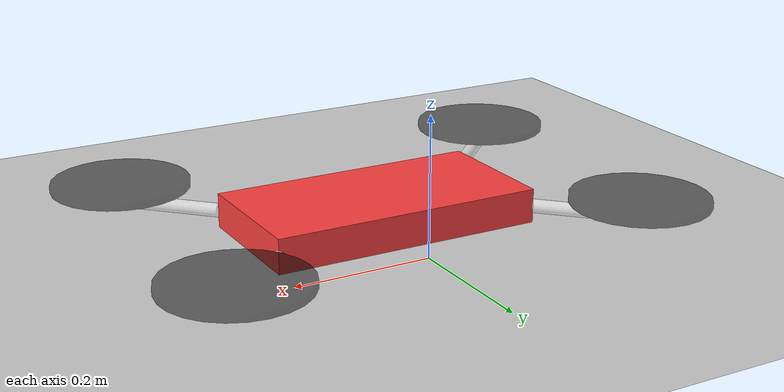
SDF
<sdf version='1.9'>
  <world name='empty'>
    <physics name='1ms' type='ignored'>
      <max_step_size>0.001</max_step_size>
      <real_time_factor>1</real_time_factor>
      <real_time_update_rate>1000</real_time_update_rate>
    </physics>
    <plugin name='gz::sim::systems::Physics' filename='ignition-gazebo-physics-system'/>
    <plugin name='gz::sim::systems::UserCommands' filename='ignition-gazebo-user-commands-system'/>
    <plugin name='gz::sim::systems::SceneBroadcaster' filename='ignition-gazebo-scene-broadcaster-system'/>
    <plugin name='gz::sim::systems::Contact' filename='ignition-gazebo-contact-system'/>
    <gravity>0 0 -9.8</gravity>
    <magnetic_field>6e-06 2.3e-05 -4.2e-05</magnetic_field>
    <atmosphere type='adiabatic'/>
    <scene>
      <ambient>0.4 0.4 0.4 1</ambient>
      <background>0.7 0.7 0.7 1</background>
      <shadows>true</shadows>
    </scene>
    <model name='ground_plane'>
      <static>true</static>
      <link name='link'>
        <collision name='collision'>
          <geometry>
            <plane>
              <normal>0 0 1</normal>
              <size>100 100</size>
            </plane>
          </geometry>
          <surface>
            <friction>
              <ode/>
            </friction>
            <bounce/>
            <contact/>
          </surface>
        </collision>
        <visual name='visual'>
          <geometry>
            <plane>
              <normal>0 0 1</normal>
              <size>100 100</size>
            </plane>
          </geometry>
          <material>
            <ambient>0.8 0.8 0.8 1</ambient>
            <diffuse>0.8 0.8 0.8 1</diffuse>
            <specular>0.8 0.8 0.8 1</specular>
          </material>
        </visual>
        <pose>0 0 0 0 -0 0</pose>
        <inertial>
          <pose>0 0 0 0 -0 0</pose>
          <mass>1</mass>
          <inertia>
            <ixx>1</ixx>
            <ixy>0</ixy>
            <ixz>0</ixz>
            <iyy>1</iyy>
            <iyz>0</iyz>
            <izz>1</izz>
          </inertia>
        </inertial>
        <enable_wind>false</enable_wind>
      </link>
      <pose>0 0 0 0 -0 0</pose>
      <self_collide>false</self_collide>
    </model>
    <model name='drone_model'>
      <link name='frame'>
        <inertial>
          <pose>0 0 0 0 -0 0</pose>
          <mass>0.95999999999999996</mass>
          <inertia>
            <ixx>0.0127917</ixx>
            <ixy>0</ixy>
            <ixz>0</ixz>
            <iyy>0.0063916700000000003</iyy>
            <iyz>0</iyz>
            <izz>0.018816699999999999</izz>
          </inertia>
        </inertial>
        <collision name='frame_collision'>
          <pose>0 0 0 0 0 0</pose>
          <geometry>
            <box>
              <size>0.4 0.2 0.05</size>
            </box>
          </geometry>
          <surface>
            <friction>
              <ode/>
            </friction>
            <bounce/>
            <contact/>
          </surface>
        </collision>
        <collision name='frame_fixed_joint_lump__arm1_collision_1'>
          <pose>0.2530330085889911 -0.1530330085889911 0 0 1.570796326794897 -0.7853981633974483</pose>
          <geometry>
            <cylinder>
              <length>0.14999999999999999</length>
              <radius>0.01</radius>
            </cylinder>
          </geometry>
          <surface>
            <friction>
              <ode/>
            </friction>
            <bounce/>
            <contact/>
          </surface>
        </collision>
        <collision name='frame_fixed_joint_lump__arm2_collision_2'>
          <pose>0.2530330085889911 0.1530330085889911 0 0 1.570796326794897 0.7853981633974483</pose>
          <geometry>
            <cylinder>
              <length>0.14999999999999999</length>
              <radius>0.01</radius>
            </cylinder>
          </geometry>
          <surface>
            <friction>
              <ode/>
            </friction>
            <bounce/>
            <contact/>
          </surface>
        </collision>
        <collision name='frame_fixed_joint_lump__arm3_collision_3'>
          <pose>-0.2530330085889911 0.1530330085889911 0 0 1.570796326794897 2.356194490192345</pose>
          <geometry>
            <cylinder>
              <length>0.14999999999999999</length>
              <radius>0.01</radius>
            </cylinder>
          </geometry>
          <surface>
            <friction>
              <ode/>
            </friction>
            <bounce/>
            <contact/>
          </surface>
        </collision>
        <collision name='frame_fixed_joint_lump__arm4_collision_4'>
          <pose>-0.2530330085889911 -0.1530330085889911 0 0 1.570796326794897 -2.356194490192345</pose>
          <geometry>
            <cylinder>
              <length>0.14999999999999999</length>
              <radius>0.01</radius>
            </cylinder>
          </geometry>
          <surface>
            <friction>
              <ode/>
            </friction>
            <bounce/>
            <contact/>
          </surface>
        </collision>
        <visual name='frame_visual'>
          <pose>0 0 0 0 0 0</pose>
          <geometry>
            <box>
              <size>0.4 0.2 0.05</size>
            </box>
          </geometry>
          <material>
            <diffuse>1 0.25 0.25 1</diffuse>
            <ambient>1 0.25 0.25 1</ambient>
          </material>
        </visual>
        <visual name='frame_fixed_joint_lump__arm1_visual_1'>
          <pose>0.2530330085889911 -0.1530330085889911 0 0 1.570796326794897 -0.7853981633974483</pose>
          <geometry>
            <cylinder>
              <length>0.14999999999999999</length>
              <radius>0.01</radius>
            </cylinder>
          </geometry>
          <material>
            <diffuse>1 1 1 0.5</diffuse>
            <ambient>1 1 1 0.5</ambient>
          </material>
        </visual>
        <visual name='frame_fixed_joint_lump__arm2_visual_2'>
          <pose>0.2530330085889911 0.1530330085889911 0 0 1.570796326794897 0.7853981633974483</pose>
          <geometry>
            <cylinder>
              <length>0.14999999999999999</length>
              <radius>0.01</radius>
            </cylinder>
          </geometry>
          <material>
            <diffuse>1 1 1 0.5</diffuse>
            <ambient>1 1 1 0.5</ambient>
          </material>
        </visual>
        <visual name='frame_fixed_joint_lump__arm3_visual_3'>
          <pose>-0.2530330085889911 0.1530330085889911 0 0 1.570796326794897 2.356194490192345</pose>
          <geometry>
            <cylinder>
              <length>0.14999999999999999</length>
              <radius>0.01</radius>
            </cylinder>
          </geometry>
          <material>
            <diffuse>1 1 1 0.5</diffuse>
            <ambient>1 1 1 0.5</ambient>
          </material>
        </visual>
        <visual name='frame_fixed_joint_lump__arm4_visual_4'>
          <pose>-0.2530330085889911 -0.1530330085889911 0 0 1.570796326794897 -2.356194490192345</pose>
          <geometry>
            <cylinder>
              <length>0.14999999999999999</length>
              <radius>0.01</radius>
            </cylinder>
          </geometry>
          <material>
            <diffuse>1 1 1 0.5</diffuse>
            <ambient>1 1 1 0.5</ambient>
          </material>
        </visual>
        <pose>0 0 0 0 -0 0</pose>
        <enable_wind>false</enable_wind>
      </link>
      <joint name='arm1_propeller1' type='revolute'>
        <pose>0 0 0 0 -0 0</pose>
        <parent>frame</parent>
        <child>propeller1</child>
        <axis>
          <xyz>0 0 1</xyz>
          <limit>
            <lower>-10000000000000000</lower>
            <upper>10000000000000000</upper>
            <effort>0.10000000000000001</effort>
            <velocity>10</velocity>
            <stiffness>100000000</stiffness>
            <dissipation>1</dissipation>
          </limit>
          <dynamics>
            <spring_reference>0</spring_reference>
            <spring_stiffness>0</spring_stiffness>
            <damping>0</damping>
            <friction>0</friction>
          </dynamics>
        </axis>
      </joint>
      <link name='propeller1'>
        <pose>0.306066 -0.206066 0.0249 0 0 -0</pose>
        <inertial>
          <pose>0 0 0 0 -0 0</pose>
          <mass>0.02</mass>
          <inertia>
            <ixx>5.0166600000000002e-05</ixx>
            <ixy>0</ixy>
            <ixz>0</ixz>
            <iyy>5.0166600000000002e-05</iyy>
            <iyz>0</iyz>
            <izz>0.0001</izz>
          </inertia>
        </inertial>
        <collision name='propeller1_collision'>
          <pose>0 0 0 0 0 0</pose>
          <geometry>
            <cylinder>
              <length>0.01</length>
              <radius>0.10000000000000001</radius>
            </cylinder>
          </geometry>
          <surface>
            <friction>
              <ode/>
            </friction>
            <bounce/>
            <contact/>
          </surface>
        </collision>
        <visual name='propeller1_visual'>
          <pose>0 0 0 0 0 0</pose>
          <geometry>
            <cylinder>
              <length>0.01</length>
              <radius>0.10000000000000001</radius>
            </cylinder>
          </geometry>
          <material>
            <diffuse>0 0 0 0.5</diffuse>
            <ambient>0 0 0 0.5</ambient>
          </material>
        </visual>
        <enable_wind>false</enable_wind>
      </link>
      <joint name='arm2_propeller2' type='revolute'>
        <pose>-0 0 0 0 -0 0</pose>
        <parent>frame</parent>
        <child>propeller2</child>
        <axis>
          <xyz>0 0 1</xyz>
          <limit>
            <lower>-10000000000000000</lower>
            <upper>10000000000000000</upper>
            <effort>0.10000000000000001</effort>
            <velocity>10</velocity>
            <stiffness>100000000</stiffness>
            <dissipation>1</dissipation>
          </limit>
          <dynamics>
            <spring_reference>0</spring_reference>
            <spring_stiffness>0</spring_stiffness>
            <damping>0</damping>
            <friction>0</friction>
          </dynamics>
        </axis>
      </joint>
      <link name='propeller2'>
        <pose>0.306066 0.206066 0.0249 0 0 1.57085</pose>
        <inertial>
          <pose>0 0 0 0 -0 0</pose>
          <mass>0.02</mass>
          <inertia>
            <ixx>5.0166600000000002e-05</ixx>
            <ixy>0</ixy>
            <ixz>0</ixz>
            <iyy>5.0166600000000002e-05</iyy>
            <iyz>0</iyz>
            <izz>0.0001</izz>
          </inertia>
        </inertial>
        <collision name='propeller2_collision'>
          <pose>0 0 0 0 0 0</pose>
          <geometry>
            <cylinder>
              <length>0.01</length>
              <radius>0.10000000000000001</radius>
            </cylinder>
          </geometry>
          <surface>
            <friction>
              <ode/>
            </friction>
            <bounce/>
            <contact/>
          </surface>
        </collision>
        <visual name='propeller2_visual'>
          <pose>0 0 0 0 0 0</pose>
          <geometry>
            <cylinder>
              <length>0.01</length>
              <radius>0.10000000000000001</radius>
            </cylinder>
          </geometry>
          <material>
            <diffuse>0 0 0 0.5</diffuse>
            <ambient>0 0 0 0.5</ambient>
          </material>
        </visual>
        <enable_wind>false</enable_wind>
      </link>
      <joint name='arm3_propeller3' type='revolute'>
        <pose>0 0 0 0 -0 0</pose>
        <parent>frame</parent>
        <child>propeller3</child>
        <axis>
          <xyz>0 0 1</xyz>
          <limit>
            <lower>-10000000000000000</lower>
            <upper>10000000000000000</upper>
            <effort>0.10000000000000001</effort>
            <velocity>10</velocity>
            <stiffness>100000000</stiffness>
            <dissipation>1</dissipation>
          </limit>
          <dynamics>
            <spring_reference>0</spring_reference>
            <spring_stiffness>0</spring_stiffness>
            <damping>0</damping>
            <friction>0</friction>
          </dynamics>
        </axis>
      </joint>
      <link name='propeller3'>
        <pose>-0.306066 0.206066 0.0249 0 0 3.14154</pose>
        <inertial>
          <pose>0 0 0 0 -0 0</pose>
          <mass>0.02</mass>
          <inertia>
            <ixx>5.0166600000000002e-05</ixx>
            <ixy>0</ixy>
            <ixz>0</ixz>
            <iyy>5.0166600000000002e-05</iyy>
            <iyz>0</iyz>
            <izz>0.0001</izz>
          </inertia>
        </inertial>
        <collision name='propeller3_collision'>
          <pose>0 0 0 0 0 0</pose>
          <geometry>
            <cylinder>
              <length>0.01</length>
              <radius>0.10000000000000001</radius>
            </cylinder>
          </geometry>
          <surface>
            <friction>
              <ode/>
            </friction>
            <bounce/>
            <contact/>
          </surface>
        </collision>
        <visual name='propeller3_visual'>
          <pose>0 0 0 0 0 0</pose>
          <geometry>
            <cylinder>
              <length>0.01</length>
              <radius>0.10000000000000001</radius>
            </cylinder>
          </geometry>
          <material>
            <diffuse>0 0 0 0.5</diffuse>
            <ambient>0 0 0 0.5</ambient>
          </material>
        </visual>
        <enable_wind>false</enable_wind>
      </link>
      <joint name='arm4_propeller4' type='revolute'>
        <pose>0 0 0 0 -0 0</pose>
        <parent>frame</parent>
        <child>propeller4</child>
        <axis>
          <xyz>0 0 1</xyz>
          <limit>
            <lower>-10000000000000000</lower>
            <upper>10000000000000000</upper>
            <effort>0.10000000000000001</effort>
            <velocity>10</velocity>
            <stiffness>100000000</stiffness>
            <dissipation>1</dissipation>
          </limit>
          <dynamics>
            <spring_reference>0</spring_reference>
            <spring_stiffness>0</spring_stiffness>
            <damping>0</damping>
            <friction>0</friction>
          </dynamics>
        </axis>
      </joint>
      <link name='propeller4'>
        <pose>-0.306066 -0.206066 0.0249 0 0 -1.5708</pose>
        <inertial>
          <pose>0 0 0 0 -0 0</pose>
          <mass>0.02</mass>
          <inertia>
            <ixx>5.0166600000000002e-05</ixx>
            <ixy>0</ixy>
            <ixz>0</ixz>
            <iyy>5.0166600000000002e-05</iyy>
            <iyz>0</iyz>
            <izz>0.0001</izz>
          </inertia>
        </inertial>
        <collision name='propeller4_collision'>
          <pose>0 0 0 0 0 0</pose>
          <geometry>
            <cylinder>
              <length>0.01</length>
              <radius>0.10000000000000001</radius>
            </cylinder>
          </geometry>
          <surface>
            <friction>
              <ode/>
            </friction>
            <bounce/>
            <contact/>
          </surface>
        </collision>
        <visual name='propeller4_visual'>
          <pose>0 0 0 0 0 0</pose>
          <geometry>
            <cylinder>
              <length>0.01</length>
              <radius>0.10000000000000001</radius>
            </cylinder>
          </geometry>
          <material>
            <diffuse>0 0 0 0.5</diffuse>
            <ambient>0 0 0 0.5</ambient>
          </material>
        </visual>
        <enable_wind>false</enable_wind>
      </link>
      <frame name='frame_arm1' attached_to='frame'>
        <pose>0.2 -0.1 0 0 0 -0.785398</pose>
      </frame>
      <frame name='arm1' attached_to='frame_arm1'/>
      <frame name='frame_arm2' attached_to='frame'>
        <pose>0.2 0.1 0 0 -0 0.785398</pose>
      </frame>
      <frame name='arm2' attached_to='frame_arm2'/>
      <frame name='frame_arm3' attached_to='frame'>
        <pose>-0.2 0.1 0 0 -0 2.35619</pose>
      </frame>
      <frame name='arm3' attached_to='frame_arm3'/>
      <frame name='frame_arm4' attached_to='frame'>
        <pose>-0.2 -0.1 0 0 0 -2.35619</pose>
      </frame>
      <frame name='arm4' attached_to='frame_arm4'/>
      <pose>0 -0.146245 0.025 0 0 -0</pose>
      <static>false</static>
      <self_collide>false</self_collide>
    </model>
    <light name='sun' type='directional'>
      <pose>0 0 10 0 -0 0</pose>
      <cast_shadows>true</cast_shadows>
      <intensity>1</intensity>
      <direction>-0.5 0.1 -0.9</direction>
      <diffuse>0.8 0.8 0.8 1</diffuse>
      <specular>0.2 0.2 0.2 1</specular>
      <attenuation>
        <range>1000</range>
        <linear>0.01</linear>
        <constant>0.90000000000000002</constant>
        <quadratic>0.001</quadratic>
      </attenuation>
      <spot>
        <inner_angle>0</inner_angle>
        <outer_angle>0</outer_angle>
        <falloff>0</falloff>
      </spot>
    </light>
  </world>
</sdf>
